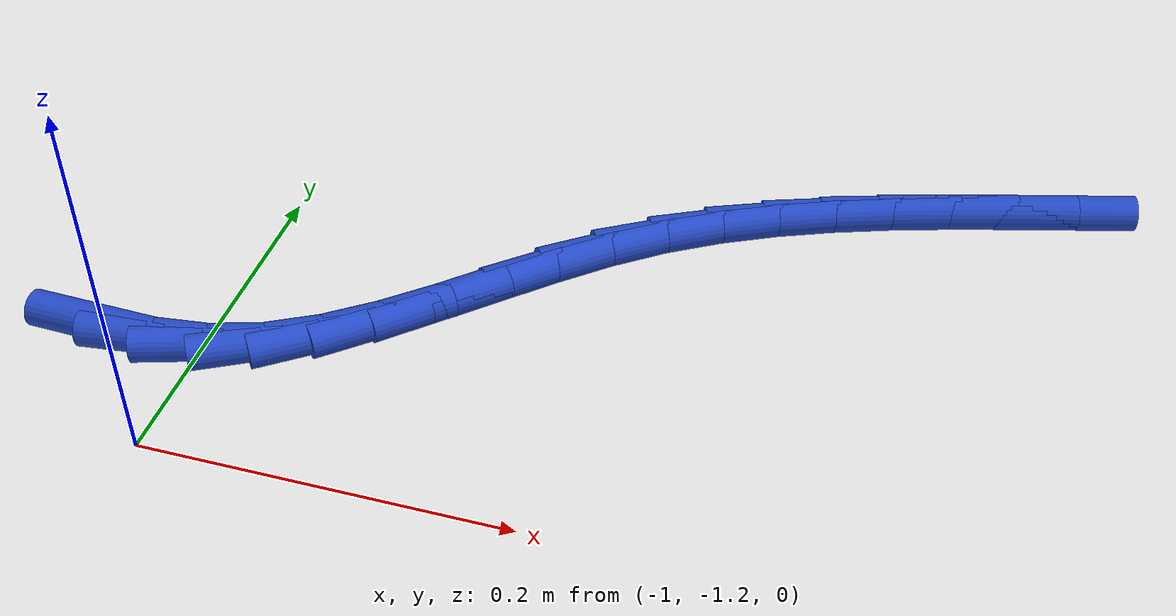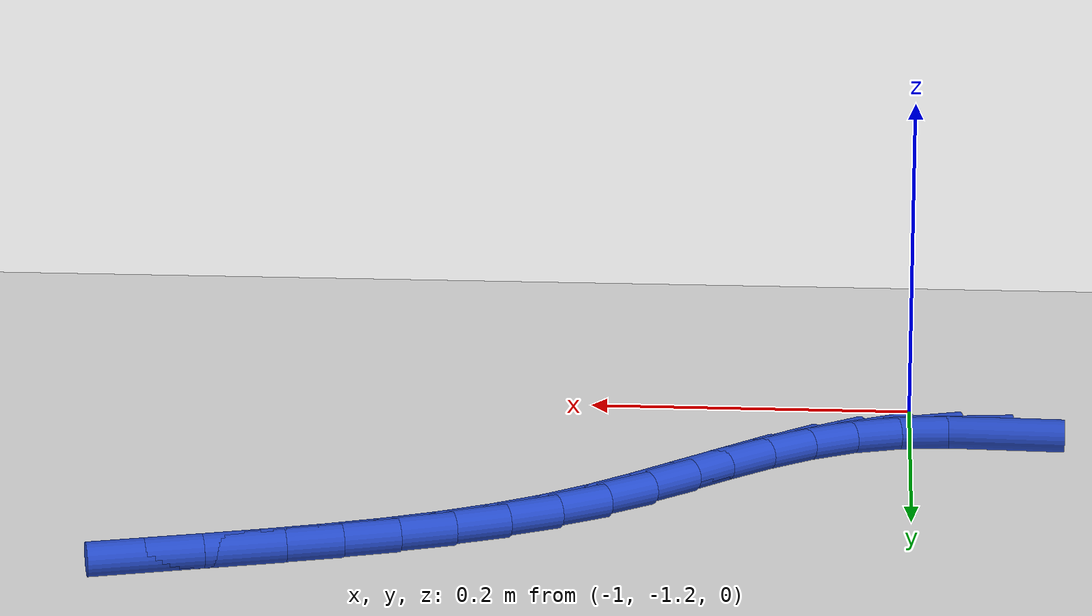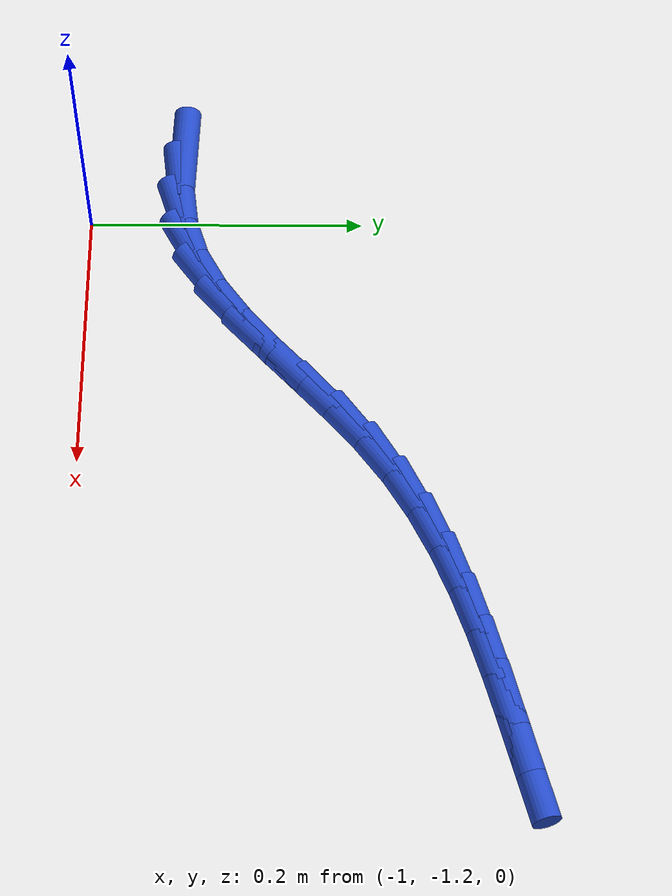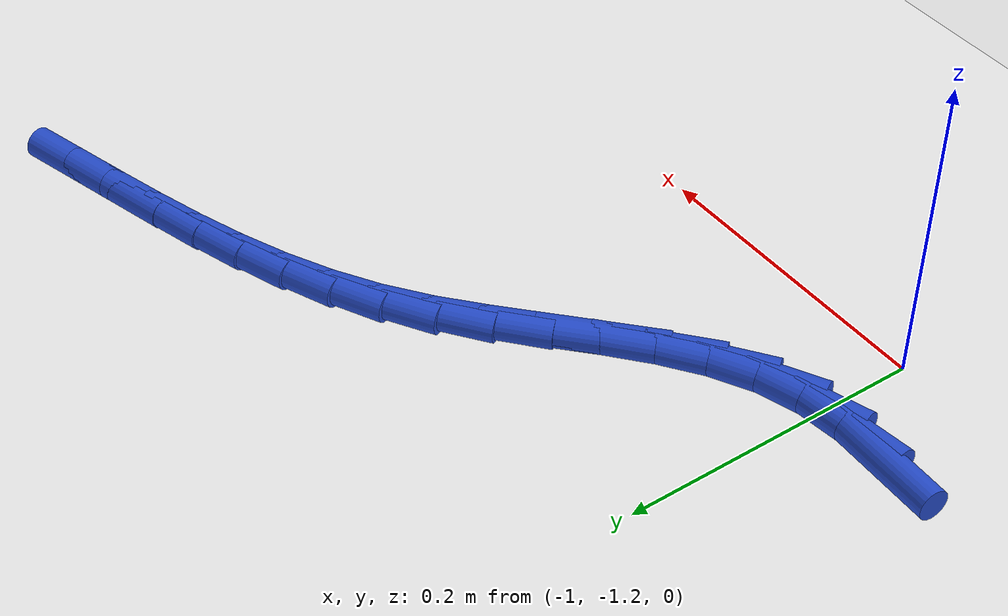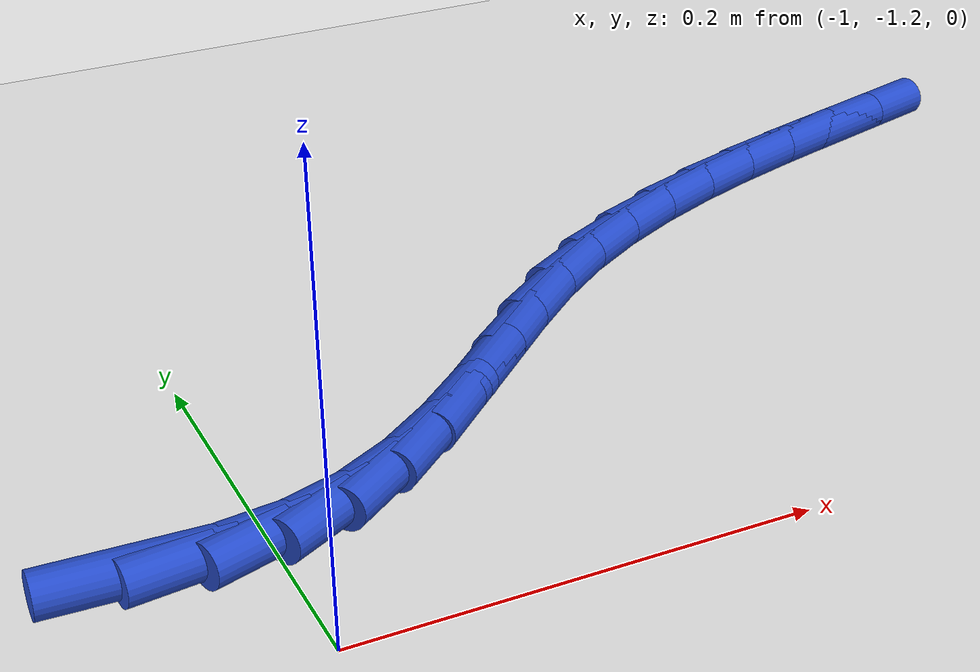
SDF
<sdf version="1.6">
 <world name="default">
  <model name="ground_plane">
   <static>1</static>
   <link name="link">
    <collision name="collision">
     <geometry><plane><normal>0 0 1</normal><size>100 100</size></plane></geometry>
     <surface><friction><ode><mu>100</mu><mu2>50</mu2></ode></friction></surface>
    </collision>
    <visual name="visual">
     <cast_shadows>0</cast_shadows>
     <geometry><plane><normal>0 0 1</normal><size>100 100</size></plane></geometry>
     <material>
      <script><uri>file://media/materials/scripts/gazebo.material</uri><name>Gazebo/WhiteGlow</name></script>
     </material>
    </visual>
   </link>
  </model>
  <model name="line">
   <link name="link_158">
    <pose>-1.0542919212628368 -1.132589739986795 0.01 0 1.57 -0.039160354039004315</pose>
    <collision name="collision">
     <geometry><cylinder><radius>0.01</radius><length>0.08</length></cylinder></geometry>
    </collision>
    <visual name="visual">
     <material>
      <script><name>Gazebo/Blue</name><uri>file://media/materials/scripts/gazebo.material</uri></script>
     </material>
     <geometry><cylinder><radius>0.01</radius><length>0.08</length></cylinder></geometry>
    </visual>
   </link>
   <link name="link_159">
    <pose>-1.0230684464092306 -1.1338130877285104 0.01 0 1.57 0.1195353374059761</pose>
    <collision name="collision">
     <geometry><cylinder><radius>0.01</radius><length>0.08</length></cylinder></geometry>
    </collision>
    <visual name="visual">
     <material>
      <script><name>Gazebo/Blue</name><uri>file://media/materials/scripts/gazebo.material</uri></script>
     </material>
     <geometry><cylinder><radius>0.01</radius><length>0.08</length></cylinder></geometry>
    </visual>
   </link>
   <link name="link_160">
    <pose>-0.9931175866740373 -1.130215751512025 0.01 0 1.57 0.31000934762937044</pose>
    <collision name="collision">
     <geometry><cylinder><radius>0.01</radius><length>0.08</length></cylinder></geometry>
    </collision>
    <visual name="visual">
     <material>
      <script><name>Gazebo/Blue</name><uri>file://media/materials/scripts/gazebo.material</uri></script>
     </material>
     <geometry><cylinder><radius>0.01</radius><length>0.08</length></cylinder></geometry>
    </visual>
   </link>
   <link name="link_161">
    <pose>-0.9648010657223359 -1.1211448991498583 0.01 0 1.57 0.496089075833455</pose>
    <collision name="collision">
     <geometry><cylinder><radius>0.01</radius><length>0.08</length></cylinder></geometry>
    </collision>
    <visual name="visual">
     <material>
      <script><name>Gazebo/Blue</name><uri>file://media/materials/scripts/gazebo.material</uri></script>
     </material>
     <geometry><cylinder><radius>0.01</radius><length>0.08</length></cylinder></geometry>
    </visual>
   </link>
   <link name="link_162">
    <pose>-0.9381438130155778 -1.1067170565788482 0.01 0 1.57 0.6305162241655362</pose>
    <collision name="collision">
     <geometry><cylinder><radius>0.01</radius><length>0.08</length></cylinder></geometry>
    </collision>
    <visual name="visual">
     <material>
      <script><name>Gazebo/Blue</name><uri>file://media/materials/scripts/gazebo.material</uri></script>
     </material>
     <geometry><cylinder><radius>0.01</radius><length>0.08</length></cylinder></geometry>
    </visual>
   </link>
   <link name="link_163">
    <pose>-0.9126929190207261 -1.088140304485196 0.01 0 1.57 0.7140587940104559</pose>
    <collision name="collision">
     <geometry><cylinder><radius>0.01</radius><length>0.08</length></cylinder></geometry>
    </collision>
    <visual name="visual">
     <material>
      <script><name>Gazebo/Blue</name><uri>file://media/materials/scripts/gazebo.material</uri></script>
     </material>
     <geometry><cylinder><radius>0.01</radius><length>0.08</length></cylinder></geometry>
    </visual>
   </link>
   <link name="link_164">
    <pose>-0.8879591334540837 -1.0667057387954604 0.01 0 1.57 0.7537368380330136</pose>
    <collision name="collision">
     <geometry><cylinder><radius>0.01</radius><length>0.08</length></cylinder></geometry>
    </collision>
    <visual name="visual">
     <material>
      <script><name>Gazebo/Blue</name><uri>file://media/materials/scripts/gazebo.material</uri></script>
     </material>
     <geometry><cylinder><radius>0.01</radius><length>0.08</length></cylinder></geometry>
    </visual>
   </link>
   <link name="link_165">
    <pose>-0.8634532060319542 -1.0437044554361996 0.01 0 1.57 0.7543863894179034</pose>
    <collision name="collision">
     <geometry><cylinder><radius>0.01</radius><length>0.08</length></cylinder></geometry>
    </collision>
    <visual name="visual">
     <material>
      <script><name>Gazebo/Blue</name><uri>file://media/materials/scripts/gazebo.material</uri></script>
     </material>
     <geometry><cylinder><radius>0.01</radius><length>0.08</length></cylinder></geometry>
    </visual>
   </link>
   <link name="link_166">
    <pose>-0.8386858864706401 -1.020427550333972 0.01 0 1.57 0.7173457630519011</pose>
    <collision name="collision">
     <geometry><cylinder><radius>0.01</radius><length>0.08</length></cylinder></geometry>
    </collision>
    <visual name="visual">
     <material>
      <script><name>Gazebo/Blue</name><uri>file://media/materials/scripts/gazebo.material</uri></script>
     </material>
     <geometry><cylinder><radius>0.01</radius><length>0.08</length></cylinder></geometry>
    </visual>
   </link>
   <link name="link_167">
    <pose>-0.813167924486444 -0.9981661194153351 0.01 0 1.57 0.6416383975554776</pose>
    <collision name="collision">
     <geometry><cylinder><radius>0.01</radius><length>0.08</length></cylinder></geometry>
    </collision>
    <visual name="visual">
     <material>
      <script><name>Gazebo/Blue</name><uri>file://media/materials/scripts/gazebo.material</uri></script>
     </material>
     <geometry><cylinder><radius>0.01</radius><length>0.08</length></cylinder></geometry>
    </visual>
   </link>
   <link name="link_168">
    <pose>-0.7864215112332644 -0.9781840460343765 0.01 0 1.57 0.5489671005626005</pose>
    <collision name="collision">
     <geometry><cylinder><radius>0.01</radius><length>0.08</length></cylinder></geometry>
    </collision>
    <visual name="visual">
     <material>
      <script><name>Gazebo/Blue</name><uri>file://media/materials/scripts/gazebo.material</uri></script>
     </material>
     <geometry><cylinder><radius>0.01</radius><length>0.08</length></cylinder></geometry>
    </visual>
   </link>
   <link name="link_169">
    <pose>-0.7582916488539936 -0.9609774326296259 0.01 0 1.57 0.46737636513673797</pose>
    <collision name="collision">
     <geometry><cylinder><radius>0.01</radius><length>0.08</length></cylinder></geometry>
    </collision>
    <visual name="visual">
     <material>
      <script><name>Gazebo/Blue</name><uri>file://media/materials/scripts/gazebo.material</uri></script>
     </material>
     <geometry><cylinder><radius>0.01</radius><length>0.08</length></cylinder></geometry>
    </visual>
   </link>
   <link name="link_170">
    <pose>-0.7289832464705693 -0.9461863707871042 0.01 0 1.57 0.3995875750689402</pose>
    <collision name="collision">
     <geometry><cylinder><radius>0.01</radius><length>0.08</length></cylinder></geometry>
    </collision>
    <visual name="visual">
     <material>
      <script><name>Gazebo/Blue</name><uri>file://media/materials/scripts/gazebo.material</uri></script>
     </material>
     <geometry><cylinder><radius>0.01</radius><length>0.08</length></cylinder></geometry>
    </visual>
   </link>
   <link name="link_171">
    <pose>-0.6987201013716869 -0.9334060280522667 0.01 0 1.57 0.3460291660141281</pose>
    <collision name="collision">
     <geometry><cylinder><radius>0.01</radius><length>0.08</length></cylinder></geometry>
    </collision>
    <visual name="visual">
     <material>
      <script><name>Gazebo/Blue</name><uri>file://media/materials/scripts/gazebo.material</uri></script>
     </material>
     <geometry><cylinder><radius>0.01</radius><length>0.08</length></cylinder></geometry>
    </visual>
   </link>
   <link name="link_172">
    <pose>-0.6677260108460397 -0.9222315719705684 0.01 0 1.57 0.3066188932586413</pose>
    <collision name="collision">
     <geometry><cylinder><radius>0.01</radius><length>0.08</length></cylinder></geometry>
    </collision>
    <visual name="visual">
     <material>
      <script><name>Gazebo/Blue</name><uri>file://media/materials/scripts/gazebo.material</uri></script>
     </material>
     <geometry><cylinder><radius>0.01</radius><length>0.08</length></cylinder></geometry>
    </visual>
   </link>
   <link name="link_173">
    <pose>-0.6362247721823213 -0.9122581700874649 0.01 0 1.57 0.28108599904775733</pose>
    <collision name="collision">
     <geometry><cylinder><radius>0.01</radius><length>0.08</length></cylinder></geometry>
    </collision>
    <visual name="visual">
     <material>
      <script><name>Gazebo/Blue</name><uri>file://media/materials/scripts/gazebo.material</uri></script>
     </material>
     <geometry><cylinder><radius>0.01</radius><length>0.08</length></cylinder></geometry>
    </visual>
   </link>
   <link name="link_174">
    <pose>-0.6044401826692262 -0.9030809899484109 0.01 0 1.57 0.2692025010572829</pose>
    <collision name="collision">
     <geometry><cylinder><radius>0.01</radius><length>0.08</length></cylinder></geometry>
    </collision>
    <visual name="visual">
     <material>
      <script><name>Gazebo/Blue</name><uri>file://media/materials/scripts/gazebo.material</uri></script>
     </material>
     <geometry><cylinder><radius>0.01</radius><length>0.08</length></cylinder></geometry>
    </visual>
   </link>
   <link name="link_175">
    <pose>-0.5725960395954477 -0.8942951990988619 0.01 0 1.57 0.2709252226550139</pose>
    <collision name="collision">
     <geometry><cylinder><radius>0.01</radius><length>0.08</length></cylinder></geometry>
    </collision>
    <visual name="visual">
     <material>
      <script><name>Gazebo/Blue</name><uri>file://media/materials/scripts/gazebo.material</uri></script>
     </material>
     <geometry><cylinder><radius>0.01</radius><length>0.08</length></cylinder></geometry>
    </visual>
   </link>
  </model>
 </world>
</sdf>
